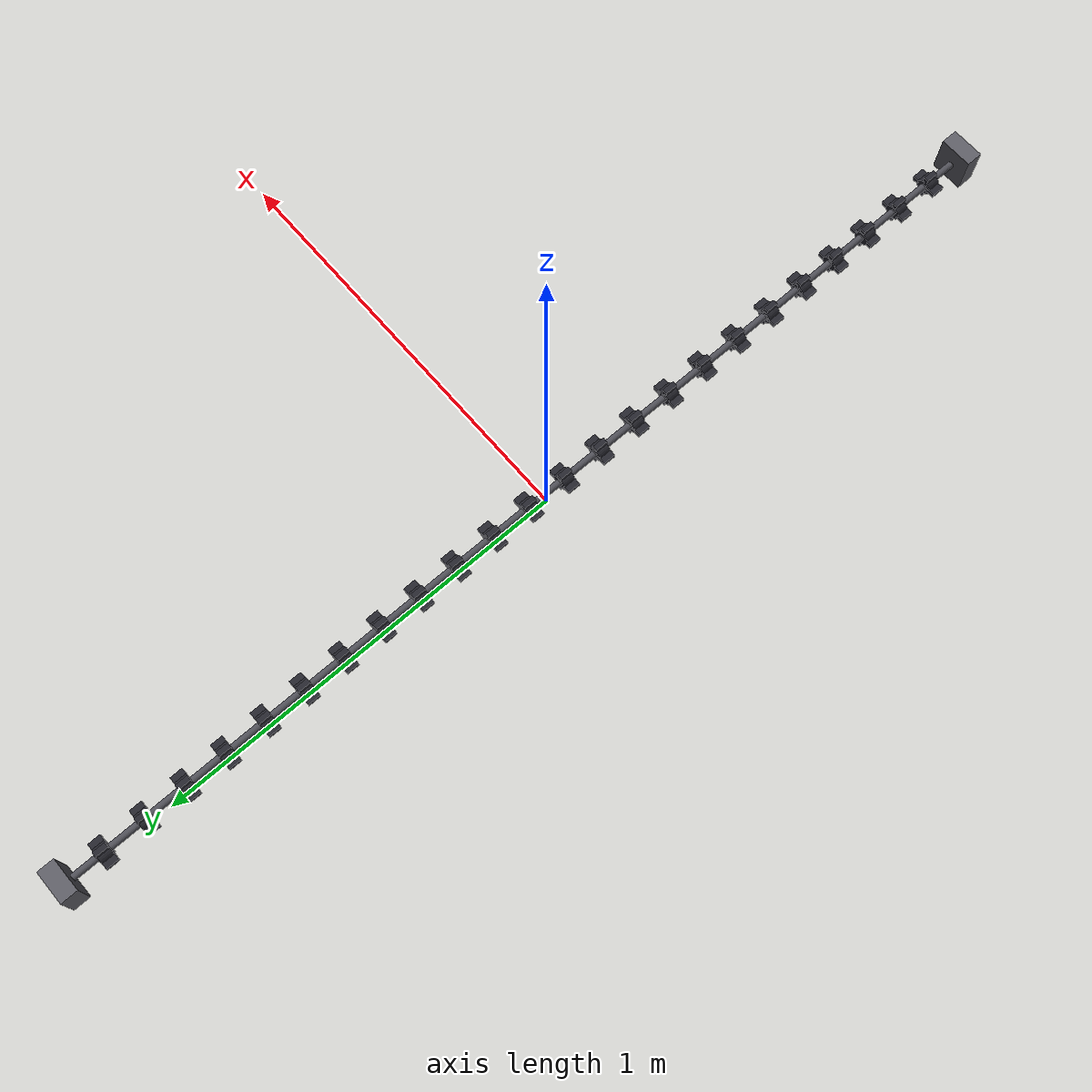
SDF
<?xml version="1.0"?>
<sdf version="1.10">
  <model name="separator_star_shaft_odd">
    <static>false</static>
    <link name="axle">
      <inertial><mass>8.0</mass><inertia><ixx>4.2</ixx><ixy>0</ixy><ixz>0</ixz><iyy>0.002</iyy><iyz>0</iyz><izz>4.2</izz></inertia></inertial>
      <visual name="axle_visual"><pose>0 0 0.055 1.570796327 0 0</pose><geometry><cylinder><radius>0.008</radius><length>2.480</length></cylinder></geometry><material><ambient>0.22 0.22 0.24 1</ambient><diffuse>0.30 0.30 0.33 1</diffuse></material></visual>
      <visual name="left_bearing"><pose>0 -1.245 0.055 0 0 0</pose><geometry><box><size>0.080 0.040 0.100</size></box></geometry><material><ambient>0.25 0.25 0.28 1</ambient><diffuse>0.35 0.35 0.38 1</diffuse></material></visual>
      <visual name="right_bearing"><pose>0 1.245 0.055 0 0 0</pose><geometry><box><size>0.080 0.040 0.100</size></box></geometry><material><ambient>0.25 0.25 0.28 1</ambient><diffuse>0.35 0.35 0.38 1</diffuse></material></visual>
    </link>
    <joint name="world_fixed" type="fixed"><parent>world</parent><child>axle</child></joint>
    <include><uri>model://separator_star_disc</uri><name>disc_00</name><pose>0 -1.150 0 0 0 0</pose></include>
    <include><uri>model://separator_star_disc</uri><name>disc_01</name><pose>0 -1.050 0 0 0 0</pose></include>
    <include><uri>model://separator_star_disc</uri><name>disc_02</name><pose>0 -0.950 0 0 0 0</pose></include>
    <include><uri>model://separator_star_disc</uri><name>disc_03</name><pose>0 -0.850 0 0 0 0</pose></include>
    <include><uri>model://separator_star_disc</uri><name>disc_04</name><pose>0 -0.750 0 0 0 0</pose></include>
    <include><uri>model://separator_star_disc</uri><name>disc_05</name><pose>0 -0.650 0 0 0 0</pose></include>
    <include><uri>model://separator_star_disc</uri><name>disc_06</name><pose>0 -0.550 0 0 0 0</pose></include>
    <include><uri>model://separator_star_disc</uri><name>disc_07</name><pose>0 -0.450 0 0 0 0</pose></include>
    <include><uri>model://separator_star_disc</uri><name>disc_08</name><pose>0 -0.350 0 0 0 0</pose></include>
    <include><uri>model://separator_star_disc</uri><name>disc_09</name><pose>0 -0.250 0 0 0 0</pose></include>
    <include><uri>model://separator_star_disc</uri><name>disc_10</name><pose>0 -0.150 0 0 0 0</pose></include>
    <include><uri>model://separator_star_disc</uri><name>disc_11</name><pose>0 -0.050 0 0 0 0</pose></include>
    <include><uri>model://separator_star_disc</uri><name>disc_12</name><pose>0 0.050 0 0 0 0</pose></include>
    <include><uri>model://separator_star_disc</uri><name>disc_13</name><pose>0 0.150 0 0 0 0</pose></include>
    <include><uri>model://separator_star_disc</uri><name>disc_14</name><pose>0 0.250 0 0 0 0</pose></include>
    <include><uri>model://separator_star_disc</uri><name>disc_15</name><pose>0 0.350 0 0 0 0</pose></include>
    <include><uri>model://separator_star_disc</uri><name>disc_16</name><pose>0 0.450 0 0 0 0</pose></include>
    <include><uri>model://separator_star_disc</uri><name>disc_17</name><pose>0 0.550 0 0 0 0</pose></include>
    <include><uri>model://separator_star_disc</uri><name>disc_18</name><pose>0 0.650 0 0 0 0</pose></include>
    <include><uri>model://separator_star_disc</uri><name>disc_19</name><pose>0 0.750 0 0 0 0</pose></include>
    <include><uri>model://separator_star_disc</uri><name>disc_20</name><pose>0 0.850 0 0 0 0</pose></include>
    <include><uri>model://separator_star_disc</uri><name>disc_21</name><pose>0 0.950 0 0 0 0</pose></include>
    <include><uri>model://separator_star_disc</uri><name>disc_22</name><pose>0 1.050 0 0 0 0</pose></include>
    <include><uri>model://separator_star_disc</uri><name>disc_23</name><pose>0 1.150 0 0 0 0</pose></include>
  </model>
</sdf>

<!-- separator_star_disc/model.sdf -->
<sdf version="1.10">
  <model name="separator_star_disc">
    <static>false</static>
    <self_collide>false</self_collide>
    <link name="base">
      <inertial><mass>1.0</mass><inertia><ixx>0.01</ixx><ixy>0</ixy><ixz>0</ixz><iyy>0.01</iyy><iyz>0</iyz><izz>0.01</izz></inertia></inertial>
    </link>
    <link name="rotor">
      <inertial>
        <pose>0 0 0.055 0 0 0</pose>
        <mass>0.25</mass>
        <inertia><ixx>0.00009</ixx><ixy>0</ixy><ixz>0</ixz><iyy>0.00008</iyy><iyz>0</iyz><izz>0.00009</izz></inertia>
      </inertial>
      <collision name="disc_collision">
        <pose>0 0 0.055 1.570796327 0 0</pose>
        <max_contacts>6</max_contacts>
        <geometry><cylinder><radius>0.025</radius><length>0.030</length></cylinder></geometry>
        <surface><friction><ode><mu>1.10</mu><mu2>0.85</mu2><fdir1>1 0 0</fdir1></ode></friction></surface>
      </collision>
      <visual name="hub">
        <pose>0 0 0.055 1.570796327 0 0</pose>
        <geometry><cylinder><radius>0.019</radius><length>0.030</length></cylinder></geometry>
        <material><ambient>0.08 0.08 0.10 1</ambient><diffuse>0.14 0.14 0.17 1</diffuse><specular>0.35 0.35 0.35 1</specular></material>
      </visual>
      <visual name="tooth_a">
        <pose>0 0 0.055 0 0 0</pose>
        <geometry><box><size>0.064 0.030 0.012</size></box></geometry>
        <material><ambient>0.08 0.08 0.10 1</ambient><diffuse>0.14 0.14 0.17 1</diffuse><specular>0.35 0.35 0.35 1</specular></material>
      </visual>
      <visual name="tooth_b">
        <pose>0 0 0.055 0 1.570796327 0</pose>
        <geometry><box><size>0.064 0.030 0.012</size></box></geometry>
        <material><ambient>0.08 0.08 0.10 1</ambient><diffuse>0.14 0.14 0.17 1</diffuse><specular>0.35 0.35 0.35 1</specular></material>
      </visual>
    </link>
    <joint name="world_fixed" type="fixed"><parent>world</parent><child>base</child></joint>
    <joint name="shaft_joint" type="revolute">
      <parent>base</parent><child>rotor</child>
      <axis>
        <xyz>0 1 0</xyz>
        <limit><lower>-1e16</lower><upper>1e16</upper><effort>80</effort><velocity>120</velocity></limit>
        <dynamics><damping>0.01</damping><friction>0.0</friction></dynamics>
      </axis>
    </joint>
    <plugin filename="gz-sim-joint-controller-system" name="gz::sim::systems::JointController">
      <joint_name>shaft_joint</joint_name>
      <topic>/singulator/separator/screen/cmd_vel</topic>
      <initial_velocity>80.0</initial_velocity>
    </plugin>
  </model>
</sdf>
